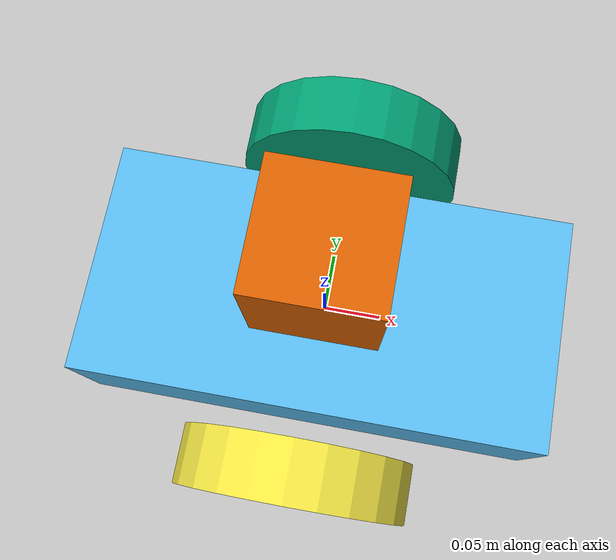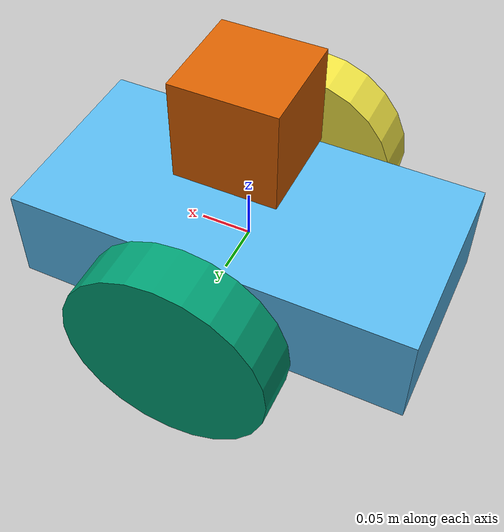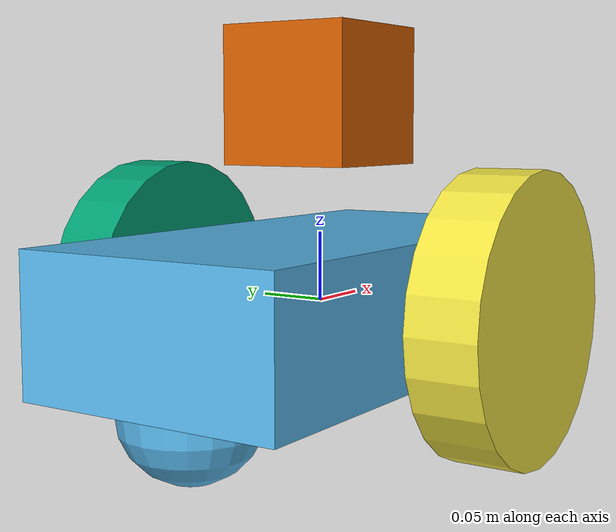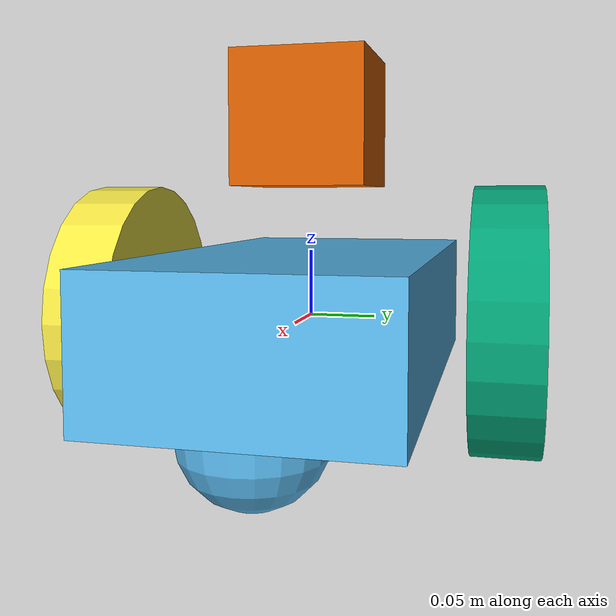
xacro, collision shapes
<?xml version='1.0'?>

<robot name="mogi_bot" xmlns:xacro="http://www.ros.org/wiki/xacro">

  <!-- GAZEBO + MATERIALS -->

  <xacro:include filename="$(find virtual_lab)/urdf/mogi_bot.gazebo" />

  <xacro:include filename="$(find virtual_lab)/urdf/materials.xacro" />

  <!-- BASE FOOTPRINT -->

  <link name="base_footprint"/>

  <!-- BASE LINK -->

  <joint name="base_footprint_joint" type="fixed">

    <origin xyz="0 0 0" rpy="0 0 0"/>

    <parent link="base_footprint"/>

    <child link="base_link"/>

  </joint>

  <link name="base_link">

    <pose>0 0 0.1 0 0 0</pose>

    <inertial>
      <mass value="15.0"/>
      <origin xyz="0 0 0" rpy="0 0 0"/>
      <inertia
        ixx="0.0625"
        ixy="0"
        ixz="0"
        iyy="0.2125"
        iyz="0"
        izz="0.25"/>
    </inertial>

    <collision name="collision">
      <origin xyz="0 0 0" rpy="0 0 0"/>
      <geometry>
        <box size=".4 .2 .1"/>
      </geometry>
    </collision>

    <visual name="base_link_visual">
      <origin xyz="0 0 0" rpy="0 0 0"/>
      <geometry>
        <mesh filename="package://virtual_lab/meshes/mogi_bot.dae"/>
      </geometry>
    </visual>

    <collision name="rear_caster_collision">
      <origin xyz="-0.15 0 -0.05" rpy="0 0 0"/>
      <geometry>
        <sphere radius="0.0499"/>
      </geometry>
    </collision>

    <visual name="rear_caster_visual">
      <origin xyz="-0.15 0 -0.05" rpy="0 0 0"/>
      <geometry>
        <sphere radius="0.05"/>
      </geometry>
    </visual>

    <collision name="front_caster_collision">
      <origin xyz="0.15 0 -0.05" rpy="0 0 0"/>
      <geometry>
        <sphere radius="0.0499"/>
      </geometry>
    </collision>

    <visual name="front_caster_visual">
      <origin xyz="0.15 0 -0.05" rpy="0 0 0"/>
      <geometry>
        <sphere radius="0.05"/>
      </geometry>
    </visual>

  </link>

  <!-- LEFT WHEEL -->

  <joint type="continuous" name="left_wheel_joint">

    <origin xyz="0 0.15 0" rpy="0 0 0"/>

    <child link="left_wheel"/>
    <parent link="base_link"/>

    <axis xyz="0 1 0"/>

    <limit effort="100" velocity="10"/>

    <dynamics damping="1.0" friction="1.0"/>

  </joint>

  <link name="left_wheel">

    <inertial>
      <mass value="5.0"/>
      <origin xyz="0 0 0" rpy="0 1.5707 1.5707"/>
      <inertia
        ixx="0.014"
        ixy="0"
        ixz="0"
        iyy="0.014"
        iyz="0"
        izz="0.025"/>
    </inertial>

    <collision>
      <origin xyz="0 0 0" rpy="0 1.5707 1.5707"/>
      <geometry>
        <cylinder radius=".1" length=".05"/>
      </geometry>
    </collision>

    <visual name="left_wheel_visual">
      <origin xyz="0 0 0" rpy="0 1.5707 1.5707"/>
      <geometry>
        <mesh filename="package://virtual_lab/meshes/wheel.dae"/>
      </geometry>
    </visual>

  </link>

  <!-- RIGHT WHEEL -->

  <joint type="continuous" name="right_wheel_joint">

    <origin xyz="0 -0.15 0" rpy="0 0 0"/>

    <child link="right_wheel"/>
    <parent link="base_link"/>

    <axis xyz="0 1 0"/>

    <limit effort="100" velocity="10"/>

    <dynamics damping="1.0" friction="1.0"/>

  </joint>

  <link name="right_wheel">

    <inertial>
      <mass value="5.0"/>
      <origin xyz="0 0 0" rpy="0 1.5707 1.5707"/>
      <inertia
        ixx="0.014"
        ixy="0"
        ixz="0"
        iyy="0.014"
        iyz="0"
        izz="0.025"/>
    </inertial>

    <collision>
      <origin xyz="0 0 0" rpy="0 1.5707 1.5707"/>
      <geometry>
        <cylinder radius=".1" length=".05"/>
      </geometry>
    </collision>

    <visual name="right_wheel_visual">
      <origin xyz="0 0 0" rpy="0 1.5707 1.5707"/>
      <geometry>
        <mesh filename="package://virtual_lab/meshes/wheel.dae"/>
      </geometry>
    </visual>

  </link>

  <!-- WHEEL FRICTION -->

  <gazebo reference="left_wheel">
    <mu1>0.2</mu1>
    <mu2>0.2</mu2>
    <kp>1000000.0</kp>
    <kd>100.0</kd>
    <minDepth>0.0001</minDepth>
    <maxVel>1.0</maxVel>
  </gazebo>

  <gazebo reference="right_wheel">
    <mu1>0.2</mu1>
    <mu2>0.2</mu2>
    <kp>1000000.0</kp>
    <kd>100.0</kd>
    <minDepth>0.0001</minDepth>
    <maxVel>1.0</maxVel>
  </gazebo>

  <gazebo reference="base_link">
    <mu1>0.000002</mu1>
    <mu2>0.000002</mu2>
  </gazebo>

  <!-- IMU -->

  <joint name="imu_joint" type="fixed">

    <origin xyz="0 0 0" rpy="0 0 0"/>

    <parent link="base_link"/>
    <child link="imu_link"/>

  </joint>

  <link name="imu_link"/>

  <!-- LIDAR -->

  <joint type="fixed" name="scan_joint">

    <origin xyz="0 0 0.15" rpy="0 0 0"/>

    <child link="lidar_link"/>
    <parent link="base_link"/>

    <axis xyz="0 1 0"/>

  </joint>

  <link name="lidar_link">

    <inertial>
      <mass value="1e-5"/>
      <origin xyz="0 0 0" rpy="0 0 0"/>
      <inertia
        ixx="1e-6"
        ixy="0"
        ixz="0"
        iyy="1e-6"
        iyz="0"
        izz="1e-6"/>
    </inertial>

    <collision name="collision">
      <origin xyz="0 0 0" rpy="0 0 0"/>
      <geometry>
        <box size=".1 .1 .1"/>
      </geometry>
    </collision>

    <visual name="scan_link_visual">
      <origin xyz="0 0 0" rpy="0 0 0"/>
      <geometry>
        <mesh filename="package://virtual_lab/meshes/lidar.dae"/>
      </geometry>
    </visual>

  </link>

  <gazebo reference="lidar_link">
    <selfCollide>false</selfCollide>
    <mu1 value="0.05"/>
    <mu2 value="0.05"/>
  </gazebo>

</robot>
